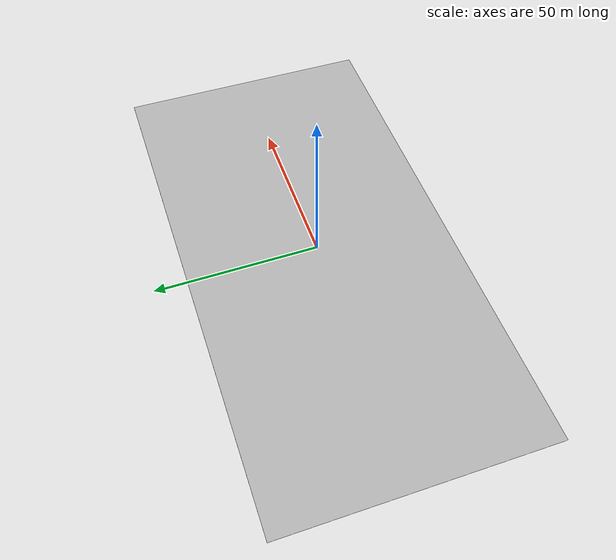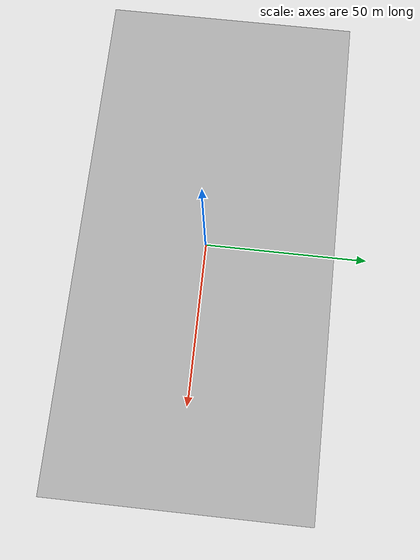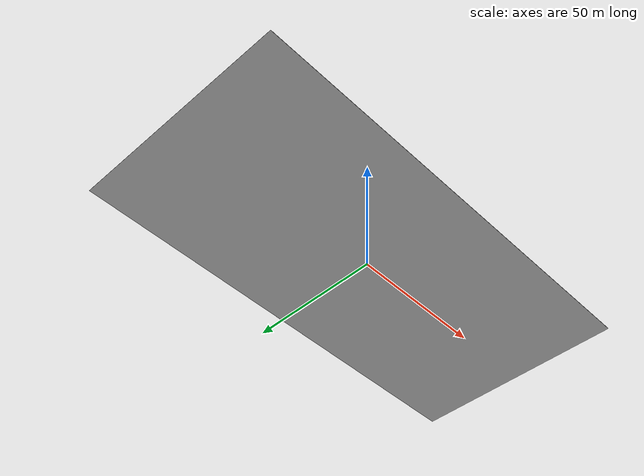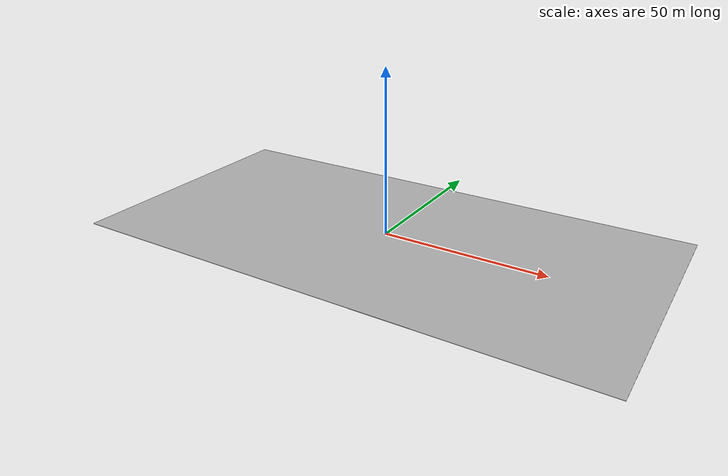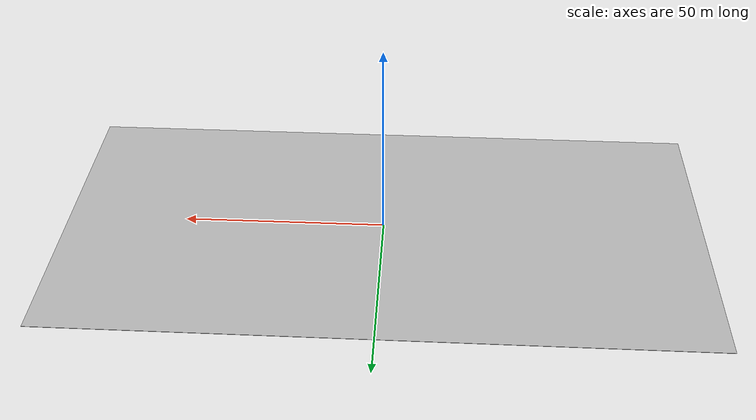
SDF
<?xml version="1.0"?>
<sdf version="1.4">
  <model name='arena'>
      <static>1</static>
      <link name='link_arena'>
        <pose>0 0 -0.1 1.5708 -0 0</pose>
        <collision name='collision'>
          <geometry>
            <mesh>
              <uri>model://arena/meshes/arena.dae</uri>
              <scale>1 0.01 1</scale>
            </mesh>
          </geometry>
          <surface>
            <friction>
              <ode>
                <mu>100</mu>
                <mu2>50</mu2>
              </ode>
            </friction>
          <bounce>
            <restitution_coefficient>0</restitution_coefficient>
            <threshold>1e+06</threshold>
          </bounce>
          <contact>
            <collide_without_contact>0</collide_without_contact>
            <collide_without_contact_bitmask>1</collide_without_contact_bitmask>
            <ode>
              <soft_cfm>0</soft_cfm>
              <soft_erp>0.2</soft_erp>
              <kp>1e+13</kp>
              <kd>1</kd>
              <max_vel>0.01</max_vel>
              <min_depth>0</min_depth>
            </ode>
            <bullet>
              <split_impulse>1</split_impulse>
              <split_impulse_penetration_threshold>-0.01</split_impulse_penetration_threshold>
              <soft_cfm>0</soft_cfm>
              <soft_erp>0.2</soft_erp>
              <kp>1e+13</kp>
              <kd>1</kd>
            </bullet>
          </contact>
          </surface>
          <max_contacts>10</max_contacts>
          <laser_retro>0</laser_retro>
        </collision>
        <visual name='visual'>
          <cast_shadows>1</cast_shadows>
          <transparency>0</transparency>
          <geometry>
            <mesh>
              <uri>model://arena/meshes/arena.dae</uri>
              <scale>1 0.01 1</scale>
            </mesh>
          </geometry>
        </visual>
        <velocity_decay>
          <linear>0</linear>
          <angular>0</angular>
        </velocity_decay>
        <self_collide>0</self_collide>
        <kinematic>0</kinematic>
        <gravity>1</gravity>
      </link>
  </model>
</sdf>
